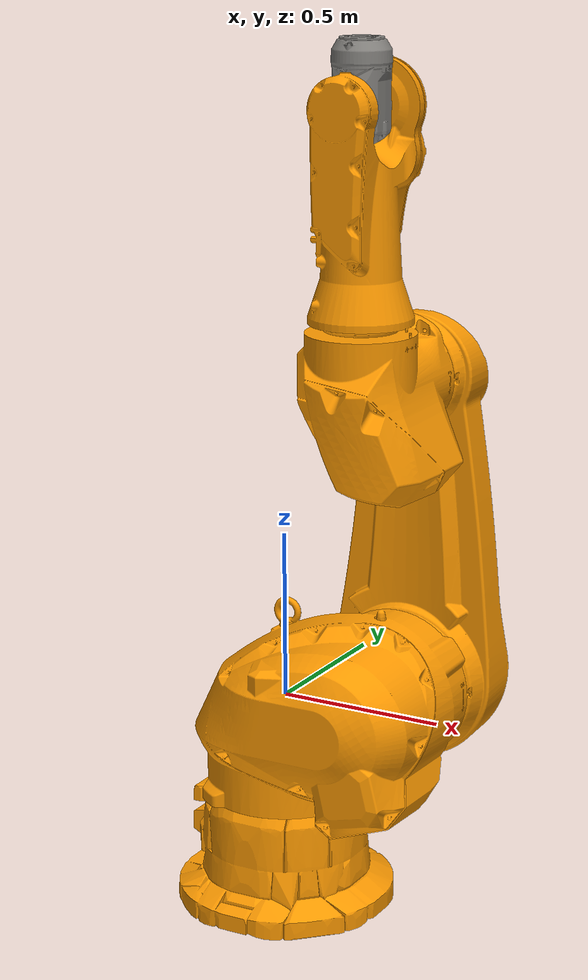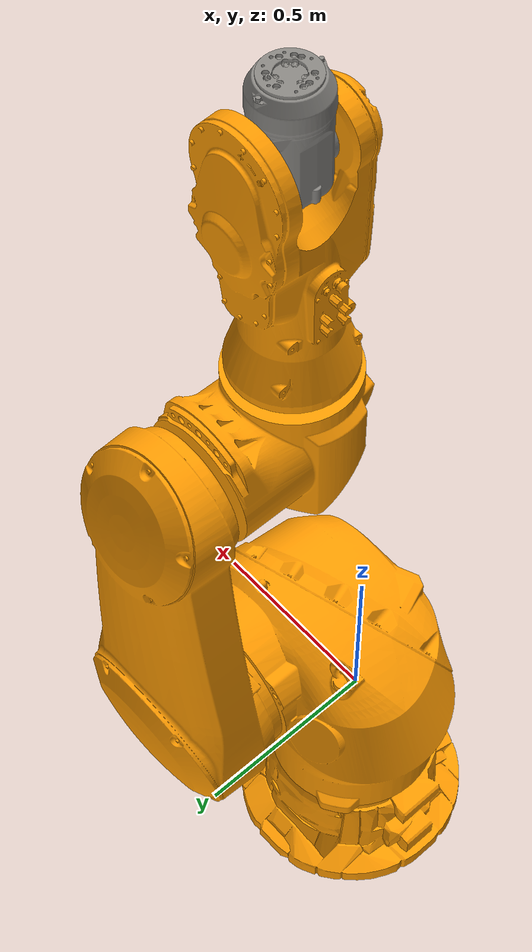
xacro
<?xml version="1.0"?>
<robot xmlns:xacro="http://www.ros.org/wiki/xacro" name="staubli_tx200">
    <xacro:arg name="initial_positions_file" default="initial_positions.yaml" />

    <!-- Import staubli_tx200 urdf file -->
    <xacro:include filename="$(find staubli_tx200_support)/urdf/tx200.urdf" />

    <!-- Import control_xacro -->
    <xacro:include filename="staubli_tx200.ros2_control.xacro" />

    <xacro:staubli_tx200_ros2_control name="FakeSystem" initial_positions_file="$(arg initial_positions_file)"/>

</robot>

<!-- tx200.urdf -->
<!-- |    This document was autogenerated by xacro from /home/ros2/ros2_ws_robots/src/staubli_experimental/staubli_tx200_support/urdf/tx200.xacro | -->
<!-- |    EDITING THIS FILE BY HAND IS NOT RECOMMENDED                                 | -->
<robot name="staubli_tx200">
  <!-- colours based on RAL values supplied by Staubli -->
  <!-- all RAL colours converted using http://www.visual-graphics.de/en/customer-care/ral-colours -->
  <!-- default colours for robots -->
  <!-- links: main serial chain -->
  <link name="base_link">
    <visual>
      <origin rpy="0 0 0" xyz="0 0 0"/>
      <geometry>
        <mesh filename="package://staubli_tx200_support/meshes/tx200/visual/base_link.STL"/>
      </geometry>
      <material name="">
        <color rgba="1.0 0.6078431372549019 0.0 1.0"/>
      </material>
    </visual>
    <collision>
      <origin rpy="0 0 0" xyz="0 0 0"/>
      <geometry>
        <mesh filename="package://staubli_tx200_support/meshes/tx200/collision/base_link.obj"/>
      </geometry>
    </collision>
  </link>
  <link name="link_1">
    <visual>
      <origin rpy="0 0 0" xyz="0 0 0"/>
      <geometry>
        <mesh filename="package://staubli_tx200_support/meshes/tx200/visual/link1.STL"/>
      </geometry>
      <material name="">
        <color rgba="1.0 0.6078431372549019 0.0 1.0"/>
      </material>
    </visual>
    <collision>
      <origin rpy="0 0 0" xyz="0 0 0"/>
      <geometry>
        <mesh filename="package://staubli_tx200_support/meshes/tx200/collision/link1.obj"/>
      </geometry>
    </collision>
  </link>
  <link name="link_2">
    <visual>
      <origin rpy="1.5707963267948966 -1.5707963267948966 0" xyz="0 0 0"/>
      <geometry>
        <mesh filename="package://staubli_tx200_support/meshes/tx200/visual/link2.STL"/>
      </geometry>
      <material name="">
        <color rgba="1.0 0.6078431372549019 0.0 1.0"/>
      </material>
    </visual>
    <collision>
      <origin rpy="1.5707963267948966 -1.5707963267948966 0" xyz="0 0 0"/>
      <geometry>
        <mesh filename="package://staubli_tx200_support/meshes/tx200/collision/link2.obj"/>
      </geometry>
    </collision>
  </link>
  <link name="link_3">
    <visual>
      <origin rpy="-1.5707963267948966 0 0" xyz="0 0 0"/>
      <geometry>
        <mesh filename="package://staubli_tx200_support/meshes/tx200/visual/link3.STL"/>
      </geometry>
      <material name="">
        <color rgba="1.0 0.6078431372549019 0.0 1.0"/>
      </material>
    </visual>
    <collision>
      <origin rpy="-1.5707963267948966 0 0" xyz="0 0 0"/>
      <geometry>
        <mesh filename="package://staubli_tx200_support/meshes/tx200/collision/link3.obj"/>
      </geometry>
    </collision>
  </link>
  <link name="link_4">
    <visual>
      <origin rpy="0 0 0" xyz="0 0 0"/>
      <geometry>
        <mesh filename="package://staubli_tx200_support/meshes/tx200/visual/link4.STL"/>
      </geometry>
      <material name="">
        <color rgba="1.0 0.6078431372549019 0.0 1.0"/>
      </material>
    </visual>
    <collision>
      <origin rpy="0 0 0" xyz="0 0 0"/>
      <geometry>
        <mesh filename="package://staubli_tx200_support/meshes/tx200/collision/link4.obj"/>
      </geometry>
    </collision>
  </link>
  <link name="link_5">
    <visual>
      <origin rpy="-1.5707963267948966 0 0" xyz="0 0 0"/>
      <geometry>
        <mesh filename="package://staubli_tx200_support/meshes/tx200/visual/link5.STL"/>
      </geometry>
      <material name="">
        <color rgba="0.5294117647058824 0.5215686274509804 0.5058823529411764 1.0"/>
      </material>
    </visual>
    <collision>
      <origin rpy="-1.5707963267948966 0 0" xyz="0 0 0"/>
      <geometry>
        <mesh filename="package://staubli_tx200_support/meshes/tx200/collision/link5.obj"/>
      </geometry>
    </collision>
  </link>
  <link name="link_6">
    <visual>
      <origin rpy="0 0 0" xyz="0 0 0"/>
      <geometry>
        <mesh filename="package://staubli_tx200_support/meshes/tx200/visual/link6.STL"/>
      </geometry>
      <material name="">
        <color rgba="0.5294117647058824 0.5215686274509804 0.5058823529411764 1.0"/>
      </material>
    </visual>
    <collision>
      <origin rpy="0 0 0" xyz="0 0 0"/>
      <geometry>
        <mesh filename="package://staubli_tx200_support/meshes/tx200/collision/link6.obj"/>
      </geometry>
    </collision>
  </link>
  <!-- joints: main serial chain -->
  <joint name="joint_1" type="revolute">
    <origin rpy="0 0 0" xyz="0 0 0"/>
    <parent link="base_link"/>
    <child link="link_1"/>
    <axis xyz="0 0 1"/>
    <!-- from Staubli instruction manual:
      (1) effort limit = 318 Nm if floor mounted
      (2) effort limit = 111 Nm if wall mounted -->
    <limit effort="318.0" lower="-3.141592653589793" upper="3.141592653589793" velocity="6.981317007977318"/>
    <dynamics damping="0.0" friction="0.0"/>
  </joint>
  <joint name="joint_2" type="revolute">
    <origin rpy="0 0 0" xyz="0.250 0 0"/>
    <parent link="link_1"/>
    <child link="link_2"/>
    <axis xyz="0 1 0"/>
    <limit effort="166.0" lower="-2.2689280275926285" upper="2.5743606466916362" velocity="6.981317007977318"/>
    <dynamics damping="0.0" friction="0.0"/>
  </joint>
  <joint name="joint_3" type="revolute">
    <origin rpy="0 0 0" xyz="0 0.0 0.950"/>
    <parent link="link_2"/>
    <child link="link_3"/>
    <axis xyz="0 1 0"/>
    <limit effort="76.0" lower="-2.530727415391778" upper="2.530727415391778" velocity="7.504915783575617"/>
    <dynamics damping="0.0" friction="0.0"/>
  </joint>
  <joint name="joint_4" type="revolute">
    <origin rpy="0 0 0" xyz="0 0 0.800"/>
    <parent link="link_3"/>
    <child link="link_4"/>
    <axis xyz="0 0 1"/>
    <limit effort="34.0" lower="-4.71238898038469" upper="4.71238898038469" velocity="9.42477796076938"/>
    <dynamics damping="0.0" friction="0.0"/>
  </joint>
  <joint name="joint_5" type="revolute">
    <origin rpy="0 0 0" xyz="0 0 0"/>
    <parent link="link_4"/>
    <child link="link_5"/>
    <axis xyz="0 1 0"/>
    <limit effort="29.0" lower="-2.007128639793479" upper="2.443460952792061" velocity="8.290313946973065"/>
    <dynamics damping="0.0" friction="0.0"/>
  </joint>
  <joint name="joint_6" type="revolute">
    <origin rpy="0 0 0" xyz="0 0 0.190"/>
    <parent link="link_5"/>
    <child link="link_6"/>
    <axis xyz="0 0 1"/>
    <limit effort="11.0" lower="-4.71238898038469" upper="4.71238898038469" velocity="13.264502315156905"/>
    <dynamics damping="0.0" friction="0.0"/>
  </joint>
  <!-- ROS-Industrial 'base' frame: base_link to Staubli World Coordinates transform -->
  <link name="base"/>
  <joint name="base_link-base" type="fixed">
    <origin rpy="0 0 0" xyz="0 0 -0.642"/>
    <parent link="base_link"/>
    <child link="base"/>
  </joint>
  <!-- ROS-Industrial 'flange' frame: attachment point for EEF models -->
  <!-- ROS-Industrial 'tool0' frame: all-zeros tool frame -->
</robot>
